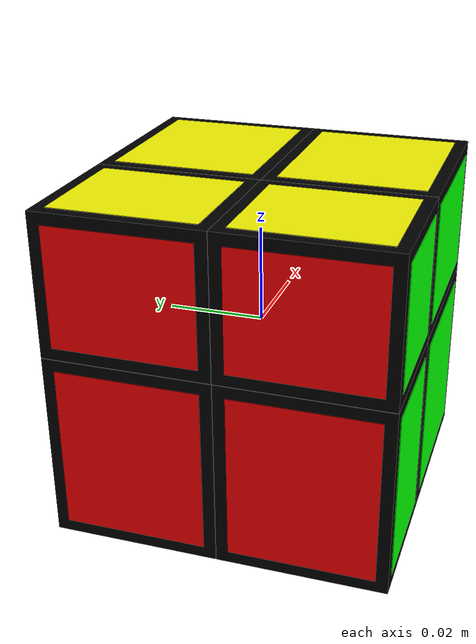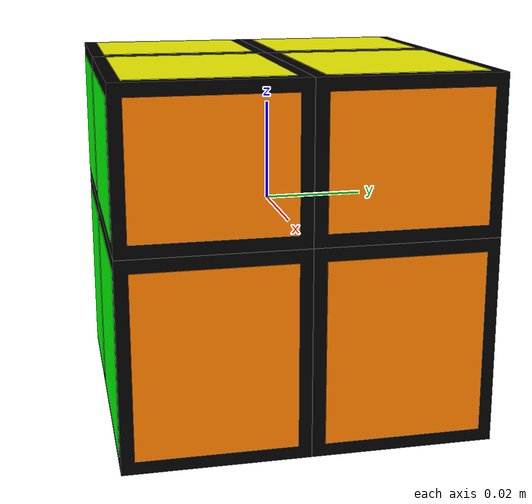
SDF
<?xml version="1.0" ?>
<sdf version="1.7">
	<model name="mirror_cube_2x2">
		<link name="center"/>
		<link name="cubie_0_0_0">
			<pose>-0.015050000000000001 -0.017550000000000003 -0.020050000000000002 0.0 0.0 0.0</pose>
			<inertial>
				<mass>0.016380000000000002</mass>
				<inertia>
					<ixx>3.856125e-06</ixx>
					<ixy>0.0</ixy>
					<ixz>0.0</ixz>
					<iyy>3.4125000000000008e-06</iyy>
					<iyz>0.0</iyz>
					<izz>2.9006250000000003e-06</izz>
				</inertia>
			</inertial>
			<collision name="collision">
				<geometry>
					<box>
						<size>0.030000000000000002 0.035 0.04</size>
					</box>
				</geometry>
				<surface>
					<friction>
						<ode>
							<mu>0.6</mu>
							<mu2>0.6</mu2>
						</ode>
					</friction>
				</surface>
			</collision>
			<visual name="black">
				<geometry>
					<box>
						<size>0.030000000000000002 0.035 0.04</size>
					</box>
				</geometry>
				<material>
					<diffuse>0 0 0 1</diffuse>
				</material>
			</visual>
			<visual name="red">
				<pose>-0.015000000000000001 0.0 0.0 0.0 0.0 0.0</pose>
				<geometry>
					<box>
						<size>0.00025 0.03 0.035</size>
					</box>
				</geometry>
				<material>
					<diffuse>1 0 0 1</diffuse>
				</material>
			</visual>
			<visual name="green">
				<pose>0.0 -0.0175 0.0 0.0 0.0 0.0</pose>
				<geometry>
					<box>
						<size>0.025 0.0003 0.035</size>
					</box>
				</geometry>
				<material>
					<diffuse>0 1 0 1</diffuse>
				</material>
			</visual>
			<visual name="white">
				<pose>0.0 0.0 -0.02 0.0 0.0 0.0</pose>
				<geometry>
					<box>
						<size>0.025 0.03 0.00035</size>
					</box>
				</geometry>
				<material>
					<diffuse>1 1 1 1</diffuse>
				</material>
			</visual>
		</link>
		<joint name="ball_0_0_0" type="ball">
			<pose>0.015050000000000001 0.017550000000000003 0.020050000000000002 -0.0 -0.0 -0.0</pose>
			<parent>center</parent>
			<child>cubie_0_0_0</child>
			<axis>
				<dynamics>
					<damping>0.1</damping>
				</dynamics>
				<limit>
					<effort>0</effort>
				</limit>
			</axis>
		</joint>
		<link name="cubie_0_0_1">
			<pose>-0.015050000000000001 -0.017550000000000003 0.015050000000000003 0.0 0.0 0.0</pose>
			<inertial>
				<mass>0.012285000000000006</mass>
				<inertia>
					<ixx>2.175468750000002e-06</ixx>
					<ixy>0.0</ixy>
					<ixz>0.0</ixz>
					<iyy>1.8427500000000013e-06</iyy>
					<iyz>0.0</iyz>
					<izz>2.1754687500000014e-06</izz>
				</inertia>
			</inertial>
			<collision name="collision">
				<geometry>
					<box>
						<size>0.030000000000000002 0.035 0.030000000000000006</size>
					</box>
				</geometry>
				<surface>
					<friction>
						<ode>
							<mu>0.6</mu>
							<mu2>0.6</mu2>
						</ode>
					</friction>
				</surface>
			</collision>
			<visual name="black">
				<geometry>
					<box>
						<size>0.030000000000000002 0.035 0.030000000000000006</size>
					</box>
				</geometry>
				<material>
					<diffuse>0 0 0 1</diffuse>
				</material>
			</visual>
			<visual name="red">
				<pose>-0.015000000000000001 0.0 0.0 0.0 0.0 0.0</pose>
				<geometry>
					<box>
						<size>0.00025 0.03 0.025</size>
					</box>
				</geometry>
				<material>
					<diffuse>1 0 0 1</diffuse>
				</material>
			</visual>
			<visual name="green">
				<pose>0.0 -0.0175 0.0 0.0 0.0 0.0</pose>
				<geometry>
					<box>
						<size>0.025 0.0003 0.025</size>
					</box>
				</geometry>
				<material>
					<diffuse>0 1 0 1</diffuse>
				</material>
			</visual>
			<visual name="yellow">
				<pose>0.0 0.0 0.015000000000000003 0.0 0.0 0.0</pose>
				<geometry>
					<box>
						<size>0.025 0.03 0.00025</size>
					</box>
				</geometry>
				<material>
					<diffuse>1 1 0 1</diffuse>
				</material>
			</visual>
		</link>
		<joint name="ball_0_0_1" type="ball">
			<pose>0.015050000000000001 0.017550000000000003 -0.015050000000000003 -0.0 -0.0 -0.0</pose>
			<parent>center</parent>
			<child>cubie_0_0_1</child>
			<axis>
				<dynamics>
					<damping>0.1</damping>
				</dynamics>
				<limit>
					<effort>0</effort>
				</limit>
			</axis>
		</joint>
		<link name="cubie_0_1_0">
			<pose>-0.015050000000000001 0.017550000000000003 -0.020050000000000002 0.0 0.0 0.0</pose>
			<inertial>
				<mass>0.016380000000000002</mass>
				<inertia>
					<ixx>3.856125e-06</ixx>
					<ixy>0.0</ixy>
					<ixz>0.0</ixz>
					<iyy>3.4125000000000008e-06</iyy>
					<iyz>0.0</iyz>
					<izz>2.9006250000000003e-06</izz>
				</inertia>
			</inertial>
			<collision name="collision">
				<geometry>
					<box>
						<size>0.030000000000000002 0.035 0.04</size>
					</box>
				</geometry>
				<surface>
					<friction>
						<ode>
							<mu>0.6</mu>
							<mu2>0.6</mu2>
						</ode>
					</friction>
				</surface>
			</collision>
			<visual name="black">
				<geometry>
					<box>
						<size>0.030000000000000002 0.035 0.04</size>
					</box>
				</geometry>
				<material>
					<diffuse>0 0 0 1</diffuse>
				</material>
			</visual>
			<visual name="red">
				<pose>-0.015000000000000001 0.0 0.0 0.0 0.0 0.0</pose>
				<geometry>
					<box>
						<size>0.00025 0.03 0.035</size>
					</box>
				</geometry>
				<material>
					<diffuse>1 0 0 1</diffuse>
				</material>
			</visual>
			<visual name="blue">
				<pose>0.0 0.0175 0.0 0.0 0.0 0.0</pose>
				<geometry>
					<box>
						<size>0.025 0.0003 0.035</size>
					</box>
				</geometry>
				<material>
					<diffuse>0 0 1 1</diffuse>
				</material>
			</visual>
			<visual name="white">
				<pose>0.0 0.0 -0.02 0.0 0.0 0.0</pose>
				<geometry>
					<box>
						<size>0.025 0.03 0.00035</size>
					</box>
				</geometry>
				<material>
					<diffuse>1 1 1 1</diffuse>
				</material>
			</visual>
		</link>
		<joint name="ball_0_1_0" type="ball">
			<pose>0.015050000000000001 -0.017550000000000003 0.020050000000000002 -0.0 -0.0 -0.0</pose>
			<parent>center</parent>
			<child>cubie_0_1_0</child>
			<axis>
				<dynamics>
					<damping>0.1</damping>
				</dynamics>
				<limit>
					<effort>0</effort>
				</limit>
			</axis>
		</joint>
		<link name="cubie_0_1_1">
			<pose>-0.015050000000000001 0.017550000000000003 0.015050000000000003 0.0 0.0 0.0</pose>
			<inertial>
				<mass>0.012285000000000006</mass>
				<inertia>
					<ixx>2.175468750000002e-06</ixx>
					<ixy>0.0</ixy>
					<ixz>0.0</ixz>
					<iyy>1.8427500000000013e-06</iyy>
					<iyz>0.0</iyz>
					<izz>2.1754687500000014e-06</izz>
				</inertia>
			</inertial>
			<collision name="collision">
				<geometry>
					<box>
						<size>0.030000000000000002 0.035 0.030000000000000006</size>
					</box>
				</geometry>
				<surface>
					<friction>
						<ode>
							<mu>0.6</mu>
							<mu2>0.6</mu2>
						</ode>
					</friction>
				</surface>
			</collision>
			<visual name="black">
				<geometry>
					<box>
						<size>0.030000000000000002 0.035 0.030000000000000006</size>
					</box>
				</geometry>
				<material>
					<diffuse>0 0 0 1</diffuse>
				</material>
			</visual>
			<visual name="red">
				<pose>-0.015000000000000001 0.0 0.0 0.0 0.0 0.0</pose>
				<geometry>
					<box>
						<size>0.00025 0.03 0.025</size>
					</box>
				</geometry>
				<material>
					<diffuse>1 0 0 1</diffuse>
				</material>
			</visual>
			<visual name="blue">
				<pose>0.0 0.0175 0.0 0.0 0.0 0.0</pose>
				<geometry>
					<box>
						<size>0.025 0.0003 0.025</size>
					</box>
				</geometry>
				<material>
					<diffuse>0 0 1 1</diffuse>
				</material>
			</visual>
			<visual name="yellow">
				<pose>0.0 0.0 0.015000000000000003 0.0 0.0 0.0</pose>
				<geometry>
					<box>
						<size>0.025 0.03 0.00025</size>
					</box>
				</geometry>
				<material>
					<diffuse>1 1 0 1</diffuse>
				</material>
			</visual>
		</link>
		<joint name="ball_0_1_1" type="ball">
			<pose>0.015050000000000001 -0.017550000000000003 -0.015050000000000003 -0.0 -0.0 -0.0</pose>
			<parent>center</parent>
			<child>cubie_0_1_1</child>
			<axis>
				<dynamics>
					<damping>0.1</damping>
				</dynamics>
				<limit>
					<effort>0</effort>
				</limit>
			</axis>
		</joint>
		<link name="cubie_1_0_0">
			<pose>0.020050000000000005 -0.017550000000000003 -0.020050000000000002 0.0 0.0 0.0</pose>
			<inertial>
				<mass>0.02184000000000001</mass>
				<inertia>
					<ixx>5.141500000000002e-06</ixx>
					<ixy>0.0</ixy>
					<ixz>0.0</ixz>
					<iyy>5.824000000000003e-06</iyy>
					<iyz>0.0</iyz>
					<izz>5.141500000000004e-06</izz>
				</inertia>
			</inertial>
			<collision name="collision">
				<geometry>
					<box>
						<size>0.04000000000000001 0.035 0.04</size>
					</box>
				</geometry>
				<surface>
					<friction>
						<ode>
							<mu>0.6</mu>
							<mu2>0.6</mu2>
						</ode>
					</friction>
				</surface>
			</collision>
			<visual name="black">
				<geometry>
					<box>
						<size>0.04000000000000001 0.035 0.04</size>
					</box>
				</geometry>
				<material>
					<diffuse>0 0 0 1</diffuse>
				</material>
			</visual>
			<visual name="orange">
				<pose>0.020000000000000004 0.0 0.0 0.0 0.0 0.0</pose>
				<geometry>
					<box>
						<size>0.00035 0.03 0.035</size>
					</box>
				</geometry>
				<material>
					<diffuse>1.0 0.5 0.0 1.0</diffuse>
				</material>
			</visual>
			<visual name="green">
				<pose>0.0 -0.0175 0.0 0.0 0.0 0.0</pose>
				<geometry>
					<box>
						<size>0.035 0.0003 0.035</size>
					</box>
				</geometry>
				<material>
					<diffuse>0 1 0 1</diffuse>
				</material>
			</visual>
			<visual name="white">
				<pose>0.0 0.0 -0.02 0.0 0.0 0.0</pose>
				<geometry>
					<box>
						<size>0.035 0.03 0.00035</size>
					</box>
				</geometry>
				<material>
					<diffuse>1 1 1 1</diffuse>
				</material>
			</visual>
		</link>
		<joint name="ball_1_0_0" type="ball">
			<pose>-0.020050000000000005 0.017550000000000003 0.020050000000000002 -0.0 -0.0 -0.0</pose>
			<parent>center</parent>
			<child>cubie_1_0_0</child>
			<axis>
				<dynamics>
					<damping>0.1</damping>
				</dynamics>
				<limit>
					<effort>0</effort>
				</limit>
			</axis>
		</joint>
		<link name="cubie_1_0_1">
			<pose>0.020050000000000005 -0.017550000000000003 0.015050000000000003 0.0 0.0 0.0</pose>
			<inertial>
				<mass>0.016380000000000006</mass>
				<inertia>
					<ixx>2.900625000000002e-06</ixx>
					<ixy>0.0</ixy>
					<ixz>0.0</ixz>
					<iyy>3.4125000000000025e-06</iyy>
					<iyz>0.0</iyz>
					<izz>3.856125000000003e-06</izz>
				</inertia>
			</inertial>
			<collision name="collision">
				<geometry>
					<box>
						<size>0.04000000000000001 0.035 0.030000000000000006</size>
					</box>
				</geometry>
				<surface>
					<friction>
						<ode>
							<mu>0.6</mu>
							<mu2>0.6</mu2>
						</ode>
					</friction>
				</surface>
			</collision>
			<visual name="black">
				<geometry>
					<box>
						<size>0.04000000000000001 0.035 0.030000000000000006</size>
					</box>
				</geometry>
				<material>
					<diffuse>0 0 0 1</diffuse>
				</material>
			</visual>
			<visual name="orange">
				<pose>0.020000000000000004 0.0 0.0 0.0 0.0 0.0</pose>
				<geometry>
					<box>
						<size>0.00035 0.03 0.025</size>
					</box>
				</geometry>
				<material>
					<diffuse>1.0 0.5 0.0 1.0</diffuse>
				</material>
			</visual>
			<visual name="green">
				<pose>0.0 -0.0175 0.0 0.0 0.0 0.0</pose>
				<geometry>
					<box>
						<size>0.035 0.0003 0.025</size>
					</box>
				</geometry>
				<material>
					<diffuse>0 1 0 1</diffuse>
				</material>
			</visual>
			<visual name="yellow">
				<pose>0.0 0.0 0.015000000000000003 0.0 0.0 0.0</pose>
				<geometry>
					<box>
						<size>0.035 0.03 0.00025</size>
					</box>
				</geometry>
				<material>
					<diffuse>1 1 0 1</diffuse>
				</material>
			</visual>
		</link>
		<joint name="ball_1_0_1" type="ball">
			<pose>-0.020050000000000005 0.017550000000000003 -0.015050000000000003 -0.0 -0.0 -0.0</pose>
			<parent>center</parent>
			<child>cubie_1_0_1</child>
			<axis>
				<dynamics>
					<damping>0.1</damping>
				</dynamics>
				<limit>
					<effort>0</effort>
				</limit>
			</axis>
		</joint>
		<link name="cubie_1_1_0">
			<pose>0.020050000000000005 0.017550000000000003 -0.020050000000000002 0.0 0.0 0.0</pose>
			<inertial>
				<mass>0.02184000000000001</mass>
				<inertia>
					<ixx>5.141500000000002e-06</ixx>
					<ixy>0.0</ixy>
					<ixz>0.0</ixz>
					<iyy>5.824000000000003e-06</iyy>
					<iyz>0.0</iyz>
					<izz>5.141500000000004e-06</izz>
				</inertia>
			</inertial>
			<collision name="collision">
				<geometry>
					<box>
						<size>0.04000000000000001 0.035 0.04</size>
					</box>
				</geometry>
				<surface>
					<friction>
						<ode>
							<mu>0.6</mu>
							<mu2>0.6</mu2>
						</ode>
					</friction>
				</surface>
			</collision>
			<visual name="black">
				<geometry>
					<box>
						<size>0.04000000000000001 0.035 0.04</size>
					</box>
				</geometry>
				<material>
					<diffuse>0 0 0 1</diffuse>
				</material>
			</visual>
			<visual name="orange">
				<pose>0.020000000000000004 0.0 0.0 0.0 0.0 0.0</pose>
				<geometry>
					<box>
						<size>0.00035 0.03 0.035</size>
					</box>
				</geometry>
				<material>
					<diffuse>1.0 0.5 0.0 1.0</diffuse>
				</material>
			</visual>
			<visual name="blue">
				<pose>0.0 0.0175 0.0 0.0 0.0 0.0</pose>
				<geometry>
					<box>
						<size>0.035 0.0003 0.035</size>
					</box>
				</geometry>
				<material>
					<diffuse>0 0 1 1</diffuse>
				</material>
			</visual>
			<visual name="white">
				<pose>0.0 0.0 -0.02 0.0 0.0 0.0</pose>
				<geometry>
					<box>
						<size>0.035 0.03 0.00035</size>
					</box>
				</geometry>
				<material>
					<diffuse>1 1 1 1</diffuse>
				</material>
			</visual>
		</link>
		<joint name="ball_1_1_0" type="ball">
			<pose>-0.020050000000000005 -0.017550000000000003 0.020050000000000002 -0.0 -0.0 -0.0</pose>
			<parent>center</parent>
			<child>cubie_1_1_0</child>
			<axis>
				<dynamics>
					<damping>0.1</damping>
				</dynamics>
				<limit>
					<effort>0</effort>
				</limit>
			</axis>
		</joint>
		<link name="cubie_1_1_1">
			<pose>0.020050000000000005 0.017550000000000003 0.015050000000000003 0.0 0.0 0.0</pose>
			<inertial>
				<mass>0.016380000000000006</mass>
				<inertia>
					<ixx>2.900625000000002e-06</ixx>
					<ixy>0.0</ixy>
					<ixz>0.0</ixz>
					<iyy>3.4125000000000025e-06</iyy>
					<iyz>0.0</iyz>
					<izz>3.856125000000003e-06</izz>
				</inertia>
			</inertial>
			<collision name="collision">
				<geometry>
					<box>
						<size>0.04000000000000001 0.035 0.030000000000000006</size>
					</box>
				</geometry>
				<surface>
					<friction>
						<ode>
							<mu>0.6</mu>
							<mu2>0.6</mu2>
						</ode>
					</friction>
				</surface>
			</collision>
			<visual name="black">
				<geometry>
					<box>
						<size>0.04000000000000001 0.035 0.030000000000000006</size>
					</box>
				</geometry>
				<material>
					<diffuse>0 0 0 1</diffuse>
				</material>
			</visual>
			<visual name="orange">
				<pose>0.020000000000000004 0.0 0.0 0.0 0.0 0.0</pose>
				<geometry>
					<box>
						<size>0.00035 0.03 0.025</size>
					</box>
				</geometry>
				<material>
					<diffuse>1.0 0.5 0.0 1.0</diffuse>
				</material>
			</visual>
			<visual name="blue">
				<pose>0.0 0.0175 0.0 0.0 0.0 0.0</pose>
				<geometry>
					<box>
						<size>0.035 0.0003 0.025</size>
					</box>
				</geometry>
				<material>
					<diffuse>0 0 1 1</diffuse>
				</material>
			</visual>
			<visual name="yellow">
				<pose>0.0 0.0 0.015000000000000003 0.0 0.0 0.0</pose>
				<geometry>
					<box>
						<size>0.035 0.03 0.00025</size>
					</box>
				</geometry>
				<material>
					<diffuse>1 1 0 1</diffuse>
				</material>
			</visual>
		</link>
		<joint name="ball_1_1_1" type="ball">
			<pose>-0.020050000000000005 -0.017550000000000003 -0.015050000000000003 -0.0 -0.0 -0.0</pose>
			<parent>center</parent>
			<child>cubie_1_1_1</child>
			<axis>
				<dynamics>
					<damping>0.1</damping>
				</dynamics>
				<limit>
					<effort>0</effort>
				</limit>
			</axis>
		</joint>
	</model>
</sdf>
